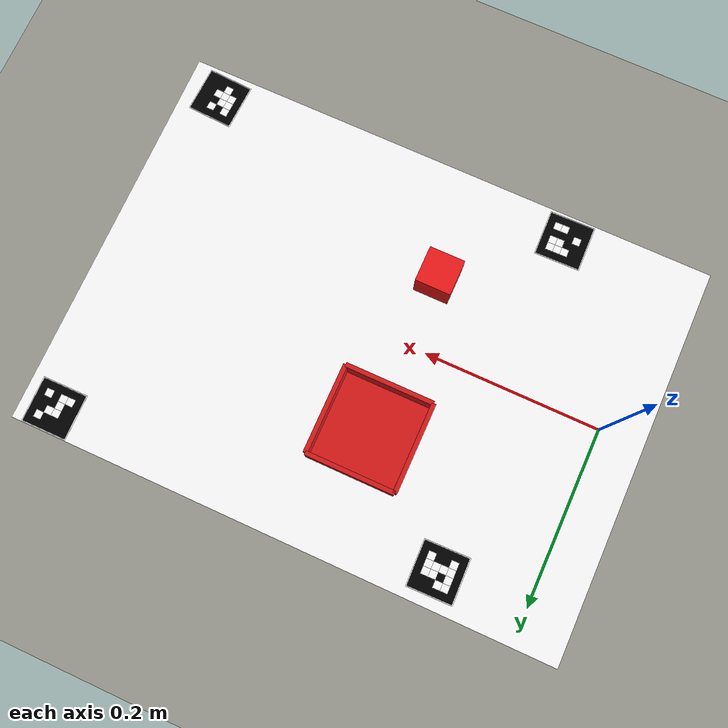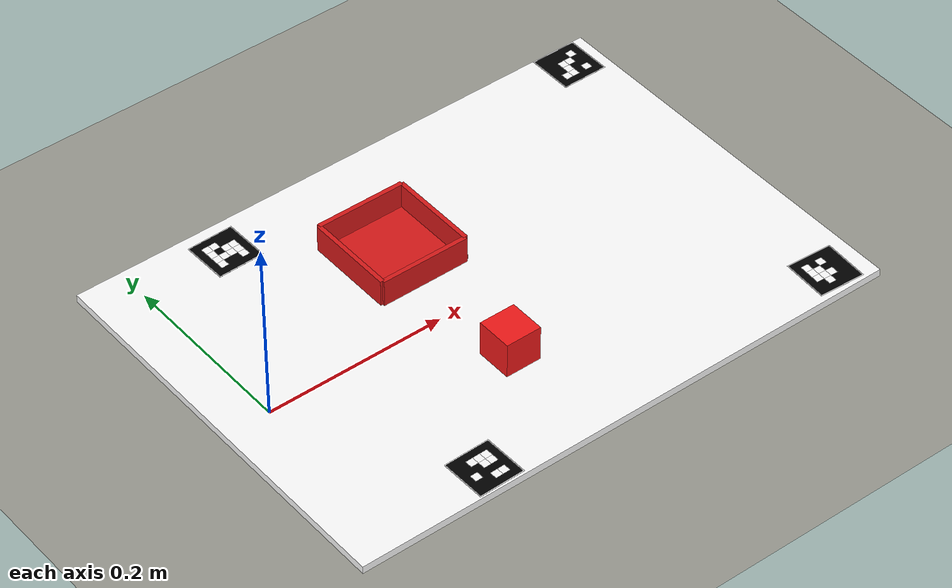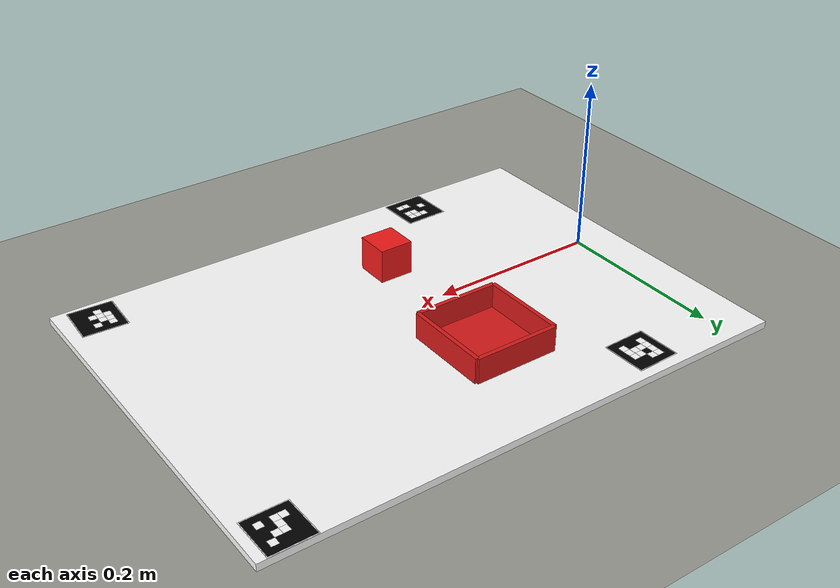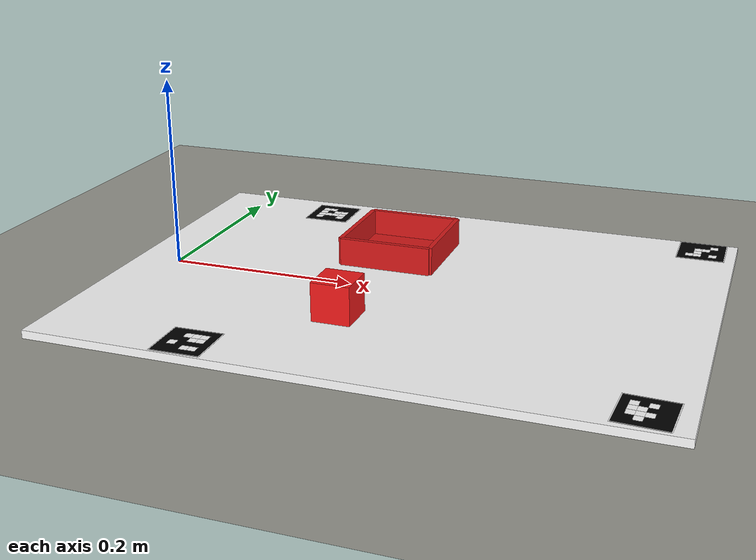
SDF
<?xml version="1.0"?>
<sdf version="1.9">
  <world name="real_table">
    <plugin filename="gz-sim-physics-system" name="gz::sim::systems::Physics" />
    <plugin filename="gz-sim-user-commands-system" name="gz::sim::systems::UserCommands" />
    <plugin filename="gz-sim-scene-broadcaster-system" name="gz::sim::systems::SceneBroadcaster" />
    <!-- The spawned MyCobot URDF loads the shared Sensors system. Loading a
         second instance here creates two Ogre scenes and crashes rendering. -->
    <physics name="default_physics" type="ode">
      <max_step_size>0.001</max_step_size>
      <real_time_factor>1.0</real_time_factor>
    </physics>
    <scene>
      <ambient>0.5 0.5 0.5 1</ambient>
      <background>0.8 0.82 0.85 1</background>
    </scene>
    <light type="directional" name="sun">
      <cast_shadows>true</cast_shadows>
      <pose>0 0 10 0 0 0</pose>
      <diffuse>0.9 0.9 0.85 1</diffuse>
      <specular>0.3 0.3 0.3 1</specular>
      <attenuation>
        <range>1000</range>
        <constant>0.9</constant>
        <linear>0.01</linear>
        <quadratic>0.001</quadratic>
      </attenuation>
      <direction>-0.5 0.3 -0.9</direction>
    </light>
    <light type="directional" name="fill_light">
      <cast_shadows>false</cast_shadows>
      <pose>0 0 8 0 0 0</pose>
      <diffuse>0.4 0.4 0.5 1</diffuse>
      <specular>0.1 0.1 0.1 1</specular>
      <direction>0.5 -0.3 -0.7</direction>
    </light>
    <model name="ground_plane">
      <static>true</static>
      <link name="link">
        <collision name="collision">
          <geometry>
            <plane>
              <normal>0 0 1</normal>
              <size>20 20</size>
            </plane>
          </geometry>
        </collision>
        <visual name="visual">
          <geometry>
            <plane>
              <normal>0 0 1</normal>
              <size>20 20</size>
            </plane>
          </geometry>
          <material>
            <ambient>0.55 0.55 0.52 1</ambient>
            <diffuse>0.6 0.6 0.57 1</diffuse>
          </material>
        </visual>
      </link>
      <pose>0 0 -0.0085 0 0 0</pose>
    </model>
    <!--622 mm along X, 449 mm along Y, 8.5 mm thick. Top Z=0; near edge X=-50 mm.-->
    <model name="table">
      <static>true</static>
      <pose>0.261 0.017 -0.00425 0 0 0</pose>
      <link name="link">
        <visual name="visual">
          <!-- Explicit UVs: the full wood image covers the board once,
               with the grain running along its 622 mm length (+X). -->
          <geometry>
            <mesh>
              <uri>package://mycobot_description/models/wood_table/meshes/tabletop.dae</uri>
            </mesh>
          </geometry>
          <material>
            <ambient>1 1 1 1</ambient>
            <diffuse>1 1 1 1</diffuse>
            <specular>0.08 0.08 0.08 1</specular>
            <pbr>
              <metal>
                <albedo_map>package://mycobot_description/models/wood_table/materials/textures/wood_albedo.png</albedo_map>
                <metalness>0.0</metalness>
                <roughness>0.65</roughness>
              </metal>
            </pbr>
          </material>
        </visual>
        <collision name="collision">
          <geometry>
            <box>
              <size>0.622 0.449 0.0085</size>
            </box>
          </geometry>
          <surface>
            <friction>
              <ode>
                <mu>0.9</mu>
                <mu2>0.9</mu2>
              </ode>
            </friction>
          </surface>
        </collision>
      </link>
    </model>
    <!--Optional physical demo: red cube to red bin, both inside the measured board.-->
    <model name="red_cube">
      <pose>0.22 -0.08 0.020 0 0 0</pose>
      <link name="link">
        <visual name="visual">
          <geometry>
            <box>
              <size>0.04 0.04 0.04</size>
            </box>
          </geometry>
          <material>
            <ambient>0.7 0.05 0.05 1</ambient>
            <diffuse>0.95 0.10 0.10 1</diffuse>
            <specular>0.4 0.1 0.1 1</specular>
          </material>
        </visual>
        <collision name="collision">
          <geometry>
            <box>
              <size>0.04 0.04 0.04</size>
            </box>
          </geometry>
          <surface>
            <friction>
              <ode>
                <mu>1.0</mu>
                <mu2>1.0</mu2>
              </ode>
            </friction>
          </surface>
        </collision>
        <inertial>
          <mass>0.05</mass>
          <inertia>
            <ixx>1.33e-5</ixx>
            <iyy>1.33e-5</iyy>
            <izz>1.33e-5</izz>
            <ixy>0</ixy>
            <ixz>0</ixz>
            <iyz>0</iyz>
          </inertia>
        </inertial>
      </link>
    </model>
    <model name="red_bin">
      <static>true</static>
      <pose>0.22 0.10 0 0 0 0</pose>
      <link name="link">
        <visual name="floor">
          <pose>0 0 0.001 0 0 0</pose>
          <geometry>
            <box>
              <size>0.10 0.10 0.002</size>
            </box>
          </geometry>
          <material>
            <ambient>0.55 0.05 0.05 1</ambient>
            <diffuse>0.85 0.10 0.10 1</diffuse>
          </material>
        </visual>
        <visual name="wn">
          <pose>0 0.05 0.015 0 0 0</pose>
          <geometry>
            <box>
              <size>0.10 0.005 0.03</size>
            </box>
          </geometry>
          <material>
            <ambient>0.55 0.05 0.05 1</ambient>
            <diffuse>0.85 0.10 0.10 1</diffuse>
          </material>
        </visual>
        <visual name="ws">
          <pose>0 -0.05 0.015 0 0 0</pose>
          <geometry>
            <box>
              <size>0.10 0.005 0.03</size>
            </box>
          </geometry>
          <material>
            <ambient>0.55 0.05 0.05 1</ambient>
            <diffuse>0.85 0.10 0.10 1</diffuse>
          </material>
        </visual>
        <visual name="we">
          <pose>0.05 0 0.015 0 0 0</pose>
          <geometry>
            <box>
              <size>0.005 0.10 0.03</size>
            </box>
          </geometry>
          <material>
            <ambient>0.55 0.05 0.05 1</ambient>
            <diffuse>0.85 0.10 0.10 1</diffuse>
          </material>
        </visual>
        <visual name="ww">
          <pose>-0.05 0 0.015 0 0 0</pose>
          <geometry>
            <box>
              <size>0.005 0.10 0.03</size>
            </box>
          </geometry>
          <material>
            <ambient>0.55 0.05 0.05 1</ambient>
            <diffuse>0.85 0.10 0.10 1</diffuse>
          </material>
        </visual>
        <collision name="floor_c">
          <pose>0 0 0.001 0 0 0</pose>
          <geometry>
            <box>
              <size>0.10 0.10 0.002</size>
            </box>
          </geometry>
        </collision>
        <collision name="wn_c">
          <pose>0 0.05 0.015 0 0 0</pose>
          <geometry>
            <box>
              <size>0.10 0.005 0.03</size>
            </box>
          </geometry>
        </collision>
        <collision name="ws_c">
          <pose>0 -0.05 0.015 0 0 0</pose>
          <geometry>
            <box>
              <size>0.10 0.005 0.03</size>
            </box>
          </geometry>
        </collision>
        <collision name="we_c">
          <pose>0.05 0 0.015 0 0 0</pose>
          <geometry>
            <box>
              <size>0.005 0.10 0.03</size>
            </box>
          </geometry>
        </collision>
        <collision name="ww_c">
          <pose>-0.05 0 0.015 0 0 0</pose>
          <geometry>
            <box>
              <size>0.005 0.10 0.03</size>
            </box>
          </geometry>
        </collision>
      </link>
    </model>
    <!--Centres: training/calibration/workspace_markers.yaml; orientations: arducam_extrinsic_servo.yaml.-->
    <include>
      <uri>package://mycobot_description/models/aruco_19</uri>
      <name>aruco_19</name>
      <pose>0.0968 0.2034 0 0 0 -1.549547177458</pose>
    </include>
    <include>
      <uri>package://mycobot_description/models/aruco_23</uri>
      <name>aruco_23</name>
      <pose>0.11 -0.179 0 0 0 -1.550472159638</pose>
    </include>
    <include>
      <uri>package://mycobot_description/models/aruco_25</uri>
      <name>aruco_25</name>
      <pose>0.535 0.215 0 0 0 -1.567821028086</pose>
    </include>
    <include>
      <uri>package://mycobot_description/models/aruco_26</uri>
      <name>aruco_26</name>
      <pose>0.53 -0.176 0 0 0 -0.053626108386</pose>
    </include>
    <!--Synthetic overhead camera; calibrated independently from the physical Arducam.-->
    <model name="table_camera">
      <static>true</static>
      <pose>0.261 0.017 0.90 0 1.570796326794897 0</pose>
      <link name="camera_link">
        <sensor name="table_camera" type="camera">
          <always_on>true</always_on>
          <update_rate>10</update_rate>
          <topic>/camera/image_raw</topic>
          <camera>
            <camera_info_topic>/camera/camera_info</camera_info_topic>
            <horizontal_fov>1.05</horizontal_fov>
            <image>
              <width>1280</width>
              <height>960</height>
              <format>R8G8B8</format>
            </image>
            <clip>
              <near>0.02</near>
              <far>3.0</far>
            </clip>
          </camera>
        </sensor>
      </link>
    </model>
  </world>
</sdf>

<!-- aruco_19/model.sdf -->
<sdf version="1.9">
  <model name="aruco_19">
    <static>true</static>
    <link name="marker">
      <visual name="white_backing">
        <pose>0.000000000000 0.000000000000 0.000050000000 0 0 0</pose>
        <cast_shadows>false</cast_shadows>
        <geometry>
          <box><size>0.052000000000 0.052000000000 0.000100000000</size></box>
        </geometry>
        <material>
          <ambient>1 1 1 1</ambient>
          <diffuse>1 1 1 1</diffuse>
          <specular>0 0 0 1</specular>
        </material>
      </visual>
      <visual name="black_square">
        <pose>0.000000000000 0.000000000000 0.000110000000 0 0 0</pose>
        <cast_shadows>false</cast_shadows>
        <geometry>
          <box><size>0.050000000000 0.050000000000 0.000020000000</size></box>
        </geometry>
        <material>
          <ambient>0 0 0 1</ambient>
          <diffuse>0 0 0 1</diffuse>
          <specular>0 0 0 1</specular>
        </material>
      </visual>
      <visual name="white_cell_1_2">
        <pose>-0.004166666667 0.012500000000 0.000125000000 0 0 0</pose>
        <cast_shadows>false</cast_shadows>
        <geometry>
          <box><size>0.008333333333 0.008333333333 0.000010000000</size></box>
        </geometry>
        <material>
          <ambient>1 1 1 1</ambient>
          <diffuse>1 1 1 1</diffuse>
          <specular>0 0 0 1</specular>
        </material>
      </visual>
      <visual name="white_cell_1_3">
        <pose>0.004166666667 0.012500000000 0.000125000000 0 0 0</pose>
        <cast_shadows>false</cast_shadows>
        <geometry>
          <box><size>0.008333333333 0.008333333333 0.000010000000</size></box>
        </geometry>
        <material>
          <ambient>1 1 1 1</ambient>
          <diffuse>1 1 1 1</diffuse>
          <specular>0 0 0 1</specular>
        </material>
      </visual>
      <visual name="white_cell_1_4">
        <pose>0.012500000000 0.012500000000 0.000125000000 0 0 0</pose>
        <cast_shadows>false</cast_shadows>
        <geometry>
          <box><size>0.008333333333 0.008333333333 0.000010000000</size></box>
        </geometry>
        <material>
          <ambient>1 1 1 1</ambient>
          <diffuse>1 1 1 1</diffuse>
          <specular>0 0 0 1</specular>
        </material>
      </visual>
      <visual name="white_cell_2_2">
        <pose>-0.004166666667 0.004166666667 0.000125000000 0 0 0</pose>
        <cast_shadows>false</cast_shadows>
        <geometry>
          <box><size>0.008333333333 0.008333333333 0.000010000000</size></box>
        </geometry>
        <material>
          <ambient>1 1 1 1</ambient>
          <diffuse>1 1 1 1</diffuse>
          <specular>0 0 0 1</specular>
        </material>
      </visual>
      <visual name="white_cell_2_3">
        <pose>0.004166666667 0.004166666667 0.000125000000 0 0 0</pose>
        <cast_shadows>false</cast_shadows>
        <geometry>
          <box><size>0.008333333333 0.008333333333 0.000010000000</size></box>
        </geometry>
        <material>
          <ambient>1 1 1 1</ambient>
          <diffuse>1 1 1 1</diffuse>
          <specular>0 0 0 1</specular>
        </material>
      </visual>
      <visual name="white_cell_3_1">
        <pose>-0.012500000000 -0.004166666667 0.000125000000 0 0 0</pose>
        <cast_shadows>false</cast_shadows>
        <geometry>
          <box><size>0.008333333333 0.008333333333 0.000010000000</size></box>
        </geometry>
        <material>
          <ambient>1 1 1 1</ambient>
          <diffuse>1 1 1 1</diffuse>
          <specular>0 0 0 1</specular>
        </material>
      </visual>
      <visual name="white_cell_3_3">
        <pose>0.004166666667 -0.004166666667 0.000125000000 0 0 0</pose>
        <cast_shadows>false</cast_shadows>
        <geometry>
          <box><size>0.008333333333 0.008333333333 0.000010000000</size></box>
        </geometry>
        <material>
          <ambient>1 1 1 1</ambient>
          <diffuse>1 1 1 1</diffuse>
          <specular>0 0 0 1</specular>
        </material>
      </visual>
      <visual name="white_cell_4_1">
        <pose>-0.012500000000 -0.012500000000 0.000125000000 0 0 0</pose>
        <cast_shadows>false</cast_shadows>
        <geometry>
          <box><size>0.008333333333 0.008333333333 0.000010000000</size></box>
        </geometry>
        <material>
          <ambient>1 1 1 1</ambient>
          <diffuse>1 1 1 1</diffuse>
          <specular>0 0 0 1</specular>
        </material>
      </visual>
      <visual name="white_cell_4_2">
        <pose>-0.004166666667 -0.012500000000 0.000125000000 0 0 0</pose>
        <cast_shadows>false</cast_shadows>
        <geometry>
          <box><size>0.008333333333 0.008333333333 0.000010000000</size></box>
        </geometry>
        <material>
          <ambient>1 1 1 1</ambient>
          <diffuse>1 1 1 1</diffuse>
          <specular>0 0 0 1</specular>
        </material>
      </visual>
      <visual name="white_cell_4_3">
        <pose>0.004166666667 -0.012500000000 0.000125000000 0 0 0</pose>
        <cast_shadows>false</cast_shadows>
        <geometry>
          <box><size>0.008333333333 0.008333333333 0.000010000000</size></box>
        </geometry>
        <material>
          <ambient>1 1 1 1</ambient>
          <diffuse>1 1 1 1</diffuse>
          <specular>0 0 0 1</specular>
        </material>
      </visual>
      <visual name="white_cell_4_4">
        <pose>0.012500000000 -0.012500000000 0.000125000000 0 0 0</pose>
        <cast_shadows>false</cast_shadows>
        <geometry>
          <box><size>0.008333333333 0.008333333333 0.000010000000</size></box>
        </geometry>
        <material>
          <ambient>1 1 1 1</ambient>
          <diffuse>1 1 1 1</diffuse>
          <specular>0 0 0 1</specular>
        </material>
      </visual>
    </link>
  </model>
</sdf>

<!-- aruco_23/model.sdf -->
<sdf version="1.9">
  <model name="aruco_23">
    <static>true</static>
    <link name="marker">
      <visual name="white_backing">
        <pose>0.000000000000 0.000000000000 0.000050000000 0 0 0</pose>
        <cast_shadows>false</cast_shadows>
        <geometry>
          <box><size>0.052000000000 0.052000000000 0.000100000000</size></box>
        </geometry>
        <material>
          <ambient>1 1 1 1</ambient>
          <diffuse>1 1 1 1</diffuse>
          <specular>0 0 0 1</specular>
        </material>
      </visual>
      <visual name="black_square">
        <pose>0.000000000000 0.000000000000 0.000110000000 0 0 0</pose>
        <cast_shadows>false</cast_shadows>
        <geometry>
          <box><size>0.050000000000 0.050000000000 0.000020000000</size></box>
        </geometry>
        <material>
          <ambient>0 0 0 1</ambient>
          <diffuse>0 0 0 1</diffuse>
          <specular>0 0 0 1</specular>
        </material>
      </visual>
      <visual name="white_cell_1_1">
        <pose>-0.012500000000 0.012500000000 0.000125000000 0 0 0</pose>
        <cast_shadows>false</cast_shadows>
        <geometry>
          <box><size>0.008333333333 0.008333333333 0.000010000000</size></box>
        </geometry>
        <material>
          <ambient>1 1 1 1</ambient>
          <diffuse>1 1 1 1</diffuse>
          <specular>0 0 0 1</specular>
        </material>
      </visual>
      <visual name="white_cell_1_2">
        <pose>-0.004166666667 0.012500000000 0.000125000000 0 0 0</pose>
        <cast_shadows>false</cast_shadows>
        <geometry>
          <box><size>0.008333333333 0.008333333333 0.000010000000</size></box>
        </geometry>
        <material>
          <ambient>1 1 1 1</ambient>
          <diffuse>1 1 1 1</diffuse>
          <specular>0 0 0 1</specular>
        </material>
      </visual>
      <visual name="white_cell_1_4">
        <pose>0.012500000000 0.012500000000 0.000125000000 0 0 0</pose>
        <cast_shadows>false</cast_shadows>
        <geometry>
          <box><size>0.008333333333 0.008333333333 0.000010000000</size></box>
        </geometry>
        <material>
          <ambient>1 1 1 1</ambient>
          <diffuse>1 1 1 1</diffuse>
          <specular>0 0 0 1</specular>
        </material>
      </visual>
      <visual name="white_cell_2_1">
        <pose>-0.012500000000 0.004166666667 0.000125000000 0 0 0</pose>
        <cast_shadows>false</cast_shadows>
        <geometry>
          <box><size>0.008333333333 0.008333333333 0.000010000000</size></box>
        </geometry>
        <material>
          <ambient>1 1 1 1</ambient>
          <diffuse>1 1 1 1</diffuse>
          <specular>0 0 0 1</specular>
        </material>
      </visual>
      <visual name="white_cell_2_2">
        <pose>-0.004166666667 0.004166666667 0.000125000000 0 0 0</pose>
        <cast_shadows>false</cast_shadows>
        <geometry>
          <box><size>0.008333333333 0.008333333333 0.000010000000</size></box>
        </geometry>
        <material>
          <ambient>1 1 1 1</ambient>
          <diffuse>1 1 1 1</diffuse>
          <specular>0 0 0 1</specular>
        </material>
      </visual>
      <visual name="white_cell_2_4">
        <pose>0.012500000000 0.004166666667 0.000125000000 0 0 0</pose>
        <cast_shadows>false</cast_shadows>
        <geometry>
          <box><size>0.008333333333 0.008333333333 0.000010000000</size></box>
        </geometry>
        <material>
          <ambient>1 1 1 1</ambient>
          <diffuse>1 1 1 1</diffuse>
          <specular>0 0 0 1</specular>
        </material>
      </visual>
      <visual name="white_cell_3_1">
        <pose>-0.012500000000 -0.004166666667 0.000125000000 0 0 0</pose>
        <cast_shadows>false</cast_shadows>
        <geometry>
          <box><size>0.008333333333 0.008333333333 0.000010000000</size></box>
        </geometry>
        <material>
          <ambient>1 1 1 1</ambient>
          <diffuse>1 1 1 1</diffuse>
          <specular>0 0 0 1</specular>
        </material>
      </visual>
      <visual name="white_cell_4_3">
        <pose>0.004166666667 -0.012500000000 0.000125000000 0 0 0</pose>
        <cast_shadows>false</cast_shadows>
        <geometry>
          <box><size>0.008333333333 0.008333333333 0.000010000000</size></box>
        </geometry>
        <material>
          <ambient>1 1 1 1</ambient>
          <diffuse>1 1 1 1</diffuse>
          <specular>0 0 0 1</specular>
        </material>
      </visual>
    </link>
  </model>
</sdf>

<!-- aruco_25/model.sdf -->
<sdf version="1.9">
  <model name="aruco_25">
    <static>true</static>
    <link name="marker">
      <visual name="white_backing">
        <pose>0.000000000000 0.000000000000 0.000050000000 0 0 0</pose>
        <cast_shadows>false</cast_shadows>
        <geometry>
          <box><size>0.052000000000 0.052000000000 0.000100000000</size></box>
        </geometry>
        <material>
          <ambient>1 1 1 1</ambient>
          <diffuse>1 1 1 1</diffuse>
          <specular>0 0 0 1</specular>
        </material>
      </visual>
      <visual name="black_square">
        <pose>0.000000000000 0.000000000000 0.000110000000 0 0 0</pose>
        <cast_shadows>false</cast_shadows>
        <geometry>
          <box><size>0.050000000000 0.050000000000 0.000020000000</size></box>
        </geometry>
        <material>
          <ambient>0 0 0 1</ambient>
          <diffuse>0 0 0 1</diffuse>
          <specular>0 0 0 1</specular>
        </material>
      </visual>
      <visual name="white_cell_1_1">
        <pose>-0.012500000000 0.012500000000 0.000125000000 0 0 0</pose>
        <cast_shadows>false</cast_shadows>
        <geometry>
          <box><size>0.008333333333 0.008333333333 0.000010000000</size></box>
        </geometry>
        <material>
          <ambient>1 1 1 1</ambient>
          <diffuse>1 1 1 1</diffuse>
          <specular>0 0 0 1</specular>
        </material>
      </visual>
      <visual name="white_cell_1_4">
        <pose>0.012500000000 0.012500000000 0.000125000000 0 0 0</pose>
        <cast_shadows>false</cast_shadows>
        <geometry>
          <box><size>0.008333333333 0.008333333333 0.000010000000</size></box>
        </geometry>
        <material>
          <ambient>1 1 1 1</ambient>
          <diffuse>1 1 1 1</diffuse>
          <specular>0 0 0 1</specular>
        </material>
      </visual>
      <visual name="white_cell_2_2">
        <pose>-0.004166666667 0.004166666667 0.000125000000 0 0 0</pose>
        <cast_shadows>false</cast_shadows>
        <geometry>
          <box><size>0.008333333333 0.008333333333 0.000010000000</size></box>
        </geometry>
        <material>
          <ambient>1 1 1 1</ambient>
          <diffuse>1 1 1 1</diffuse>
          <specular>0 0 0 1</specular>
        </material>
      </visual>
      <visual name="white_cell_3_2">
        <pose>-0.004166666667 -0.004166666667 0.000125000000 0 0 0</pose>
        <cast_shadows>false</cast_shadows>
        <geometry>
          <box><size>0.008333333333 0.008333333333 0.000010000000</size></box>
        </geometry>
        <material>
          <ambient>1 1 1 1</ambient>
          <diffuse>1 1 1 1</diffuse>
          <specular>0 0 0 1</specular>
        </material>
      </visual>
      <visual name="white_cell_3_3">
        <pose>0.004166666667 -0.004166666667 0.000125000000 0 0 0</pose>
        <cast_shadows>false</cast_shadows>
        <geometry>
          <box><size>0.008333333333 0.008333333333 0.000010000000</size></box>
        </geometry>
        <material>
          <ambient>1 1 1 1</ambient>
          <diffuse>1 1 1 1</diffuse>
          <specular>0 0 0 1</specular>
        </material>
      </visual>
      <visual name="white_cell_3_4">
        <pose>0.012500000000 -0.004166666667 0.000125000000 0 0 0</pose>
        <cast_shadows>false</cast_shadows>
        <geometry>
          <box><size>0.008333333333 0.008333333333 0.000010000000</size></box>
        </geometry>
        <material>
          <ambient>1 1 1 1</ambient>
          <diffuse>1 1 1 1</diffuse>
          <specular>0 0 0 1</specular>
        </material>
      </visual>
      <visual name="white_cell_4_4">
        <pose>0.012500000000 -0.012500000000 0.000125000000 0 0 0</pose>
        <cast_shadows>false</cast_shadows>
        <geometry>
          <box><size>0.008333333333 0.008333333333 0.000010000000</size></box>
        </geometry>
        <material>
          <ambient>1 1 1 1</ambient>
          <diffuse>1 1 1 1</diffuse>
          <specular>0 0 0 1</specular>
        </material>
      </visual>
    </link>
  </model>
</sdf>

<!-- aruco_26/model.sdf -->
<sdf version="1.9">
  <model name="aruco_26">
    <static>true</static>
    <link name="marker">
      <visual name="white_backing">
        <pose>0.000000000000 0.000000000000 0.000050000000 0 0 0</pose>
        <cast_shadows>false</cast_shadows>
        <geometry>
          <box><size>0.052000000000 0.052000000000 0.000100000000</size></box>
        </geometry>
        <material>
          <ambient>1 1 1 1</ambient>
          <diffuse>1 1 1 1</diffuse>
          <specular>0 0 0 1</specular>
        </material>
      </visual>
      <visual name="black_square">
        <pose>0.000000000000 0.000000000000 0.000110000000 0 0 0</pose>
        <cast_shadows>false</cast_shadows>
        <geometry>
          <box><size>0.050000000000 0.050000000000 0.000020000000</size></box>
        </geometry>
        <material>
          <ambient>0 0 0 1</ambient>
          <diffuse>0 0 0 1</diffuse>
          <specular>0 0 0 1</specular>
        </material>
      </visual>
      <visual name="white_cell_1_1">
        <pose>-0.012500000000 0.012500000000 0.000125000000 0 0 0</pose>
        <cast_shadows>false</cast_shadows>
        <geometry>
          <box><size>0.008333333333 0.008333333333 0.000010000000</size></box>
        </geometry>
        <material>
          <ambient>1 1 1 1</ambient>
          <diffuse>1 1 1 1</diffuse>
          <specular>0 0 0 1</specular>
        </material>
      </visual>
      <visual name="white_cell_1_3">
        <pose>0.004166666667 0.012500000000 0.000125000000 0 0 0</pose>
        <cast_shadows>false</cast_shadows>
        <geometry>
          <box><size>0.008333333333 0.008333333333 0.000010000000</size></box>
        </geometry>
        <material>
          <ambient>1 1 1 1</ambient>
          <diffuse>1 1 1 1</diffuse>
          <specular>0 0 0 1</specular>
        </material>
      </visual>
      <visual name="white_cell_2_1">
        <pose>-0.012500000000 0.004166666667 0.000125000000 0 0 0</pose>
        <cast_shadows>false</cast_shadows>
        <geometry>
          <box><size>0.008333333333 0.008333333333 0.000010000000</size></box>
        </geometry>
        <material>
          <ambient>1 1 1 1</ambient>
          <diffuse>1 1 1 1</diffuse>
          <specular>0 0 0 1</specular>
        </material>
      </visual>
      <visual name="white_cell_2_2">
        <pose>-0.004166666667 0.004166666667 0.000125000000 0 0 0</pose>
        <cast_shadows>false</cast_shadows>
        <geometry>
          <box><size>0.008333333333 0.008333333333 0.000010000000</size></box>
        </geometry>
        <material>
          <ambient>1 1 1 1</ambient>
          <diffuse>1 1 1 1</diffuse>
          <specular>0 0 0 1</specular>
        </material>
      </visual>
      <visual name="white_cell_3_1">
        <pose>-0.012500000000 -0.004166666667 0.000125000000 0 0 0</pose>
        <cast_shadows>false</cast_shadows>
        <geometry>
          <box><size>0.008333333333 0.008333333333 0.000010000000</size></box>
        </geometry>
        <material>
          <ambient>1 1 1 1</ambient>
          <diffuse>1 1 1 1</diffuse>
          <specular>0 0 0 1</specular>
        </material>
      </visual>
      <visual name="white_cell_3_2">
        <pose>-0.004166666667 -0.004166666667 0.000125000000 0 0 0</pose>
        <cast_shadows>false</cast_shadows>
        <geometry>
          <box><size>0.008333333333 0.008333333333 0.000010000000</size></box>
        </geometry>
        <material>
          <ambient>1 1 1 1</ambient>
          <diffuse>1 1 1 1</diffuse>
          <specular>0 0 0 1</specular>
        </material>
      </visual>
      <visual name="white_cell_3_3">
        <pose>0.004166666667 -0.004166666667 0.000125000000 0 0 0</pose>
        <cast_shadows>false</cast_shadows>
        <geometry>
          <box><size>0.008333333333 0.008333333333 0.000010000000</size></box>
        </geometry>
        <material>
          <ambient>1 1 1 1</ambient>
          <diffuse>1 1 1 1</diffuse>
          <specular>0 0 0 1</specular>
        </material>
      </visual>
      <visual name="white_cell_4_2">
        <pose>-0.004166666667 -0.012500000000 0.000125000000 0 0 0</pose>
        <cast_shadows>false</cast_shadows>
        <geometry>
          <box><size>0.008333333333 0.008333333333 0.000010000000</size></box>
        </geometry>
        <material>
          <ambient>1 1 1 1</ambient>
          <diffuse>1 1 1 1</diffuse>
          <specular>0 0 0 1</specular>
        </material>
      </visual>
    </link>
  </model>
</sdf>
